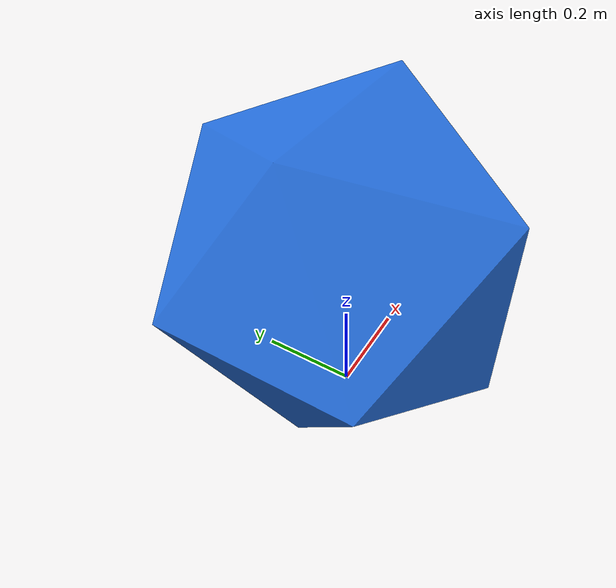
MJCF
<mujoco model="baseline_icosahedron">
  <compiler angle="radian"/>
  <asset>
    <mesh name="icosahedron"
          vertex="0.000  0.300  0.186
                  0.000  0.300 -0.186
                  0.000 -0.300  0.186
                  0.000 -0.300 -0.186
                  0.300  0.186  0.000
                  0.300 -0.186  0.000
                 -0.300  0.186  0.000
                 -0.300 -0.186  0.000
                  0.186  0.000  0.300
                 -0.186  0.000  0.300
                  0.186  0.000 -0.300
                 -0.186  0.000 -0.300"
          scale="1 1 1"/>
    <material name="steel" rgba="0.15 0.45 0.90 1" specular="0.6" shininess="0.5"/>
  </asset>
  <worldbody>
    <body name="bot" pos="0 0 0.35">
      <freejoint name="root"/>
      <geom name="ico_geom" type="mesh" mesh="icosahedron"
            material="steel" mass="200"
            friction="0.6 0.005 0.0001"/>
    </body>
  </worldbody>
  <actuator/>
</mujoco>
